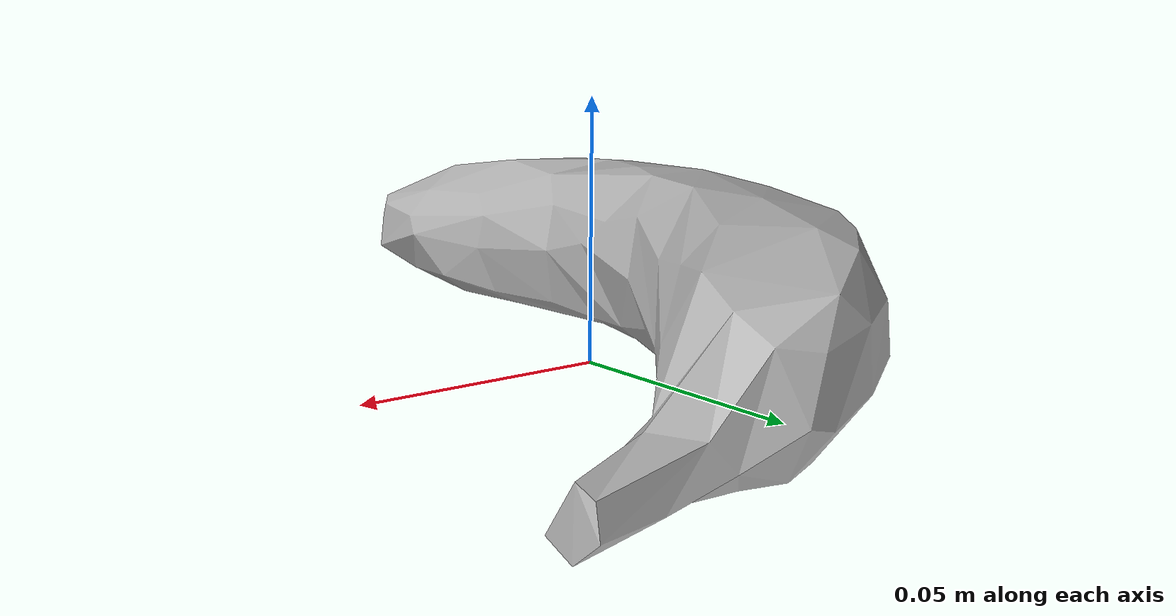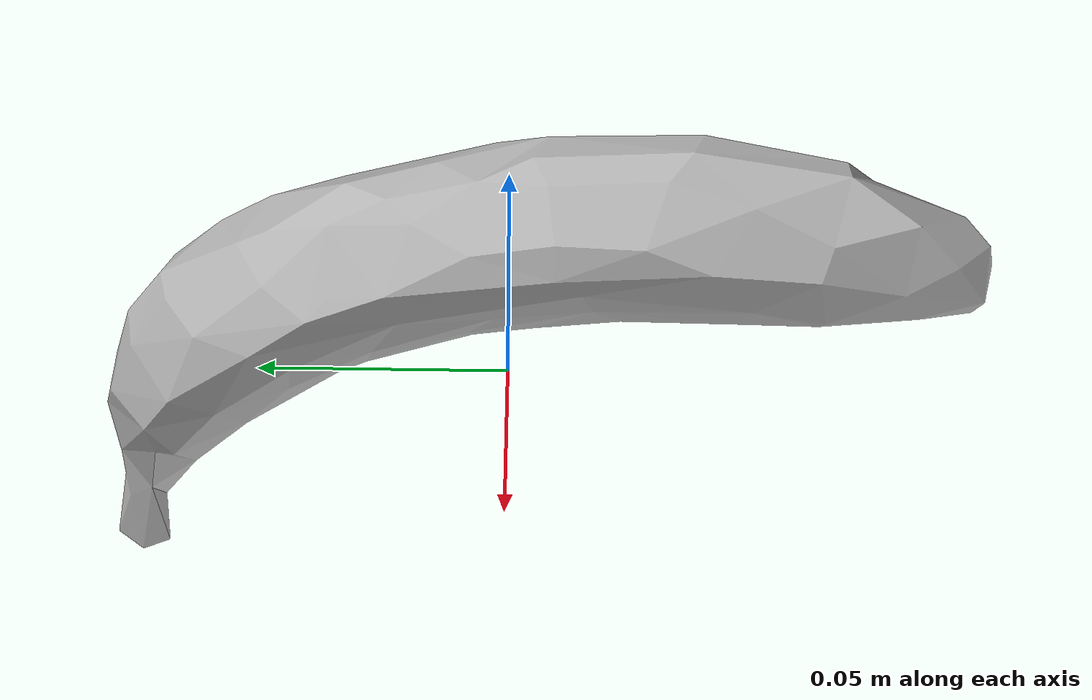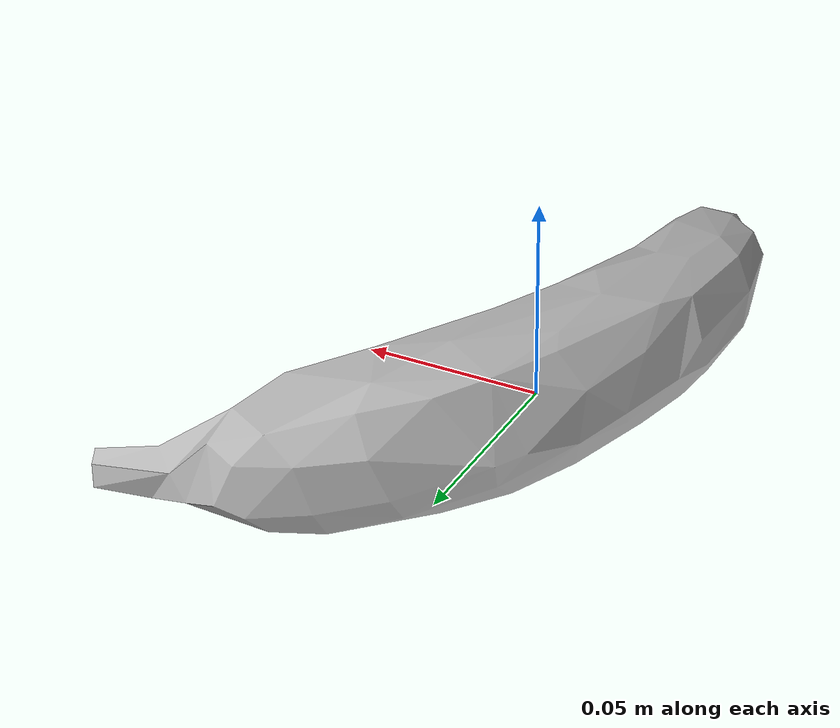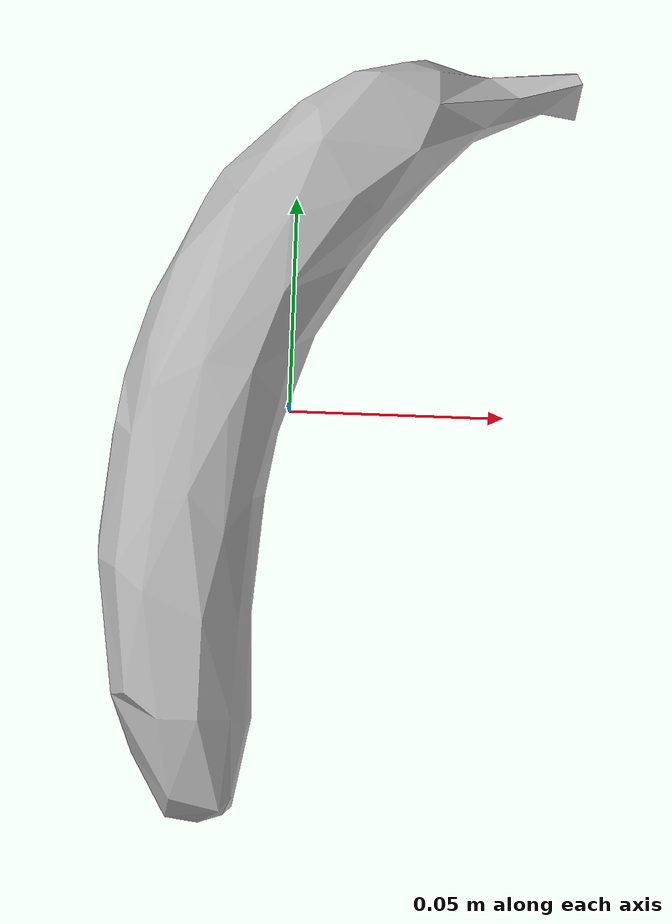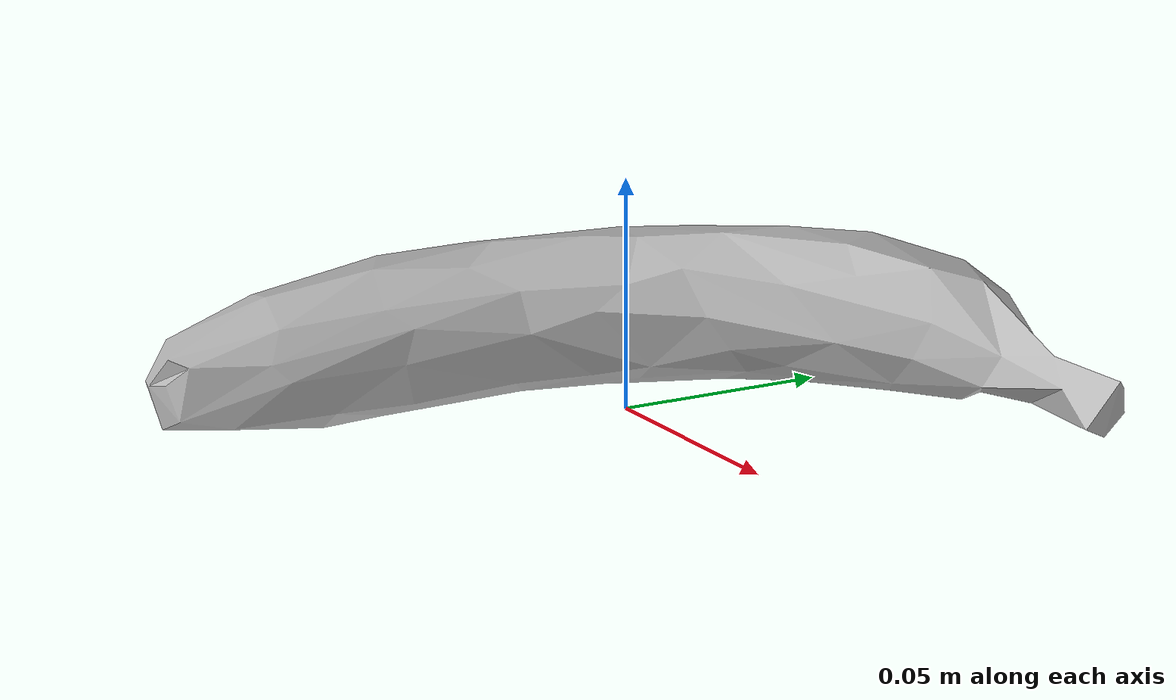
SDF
<?xml version='1.0'?>
<sdf version="1.4">
  <model name="011_banana">
    <static>false</static>
    <link name="link">
      <inertial>
        <pose>-0.0006710180276367565 0.005194163283845127 0.015295016787991408 -1.514495768997813 1.3560052253702974 2.8168364296684465</pose>
        <mass>0.02653598312066397</mass>
        <inertia>
          <ixx>6.17531827368097e-05</ixx>
          <ixy>4.5051650434579054e-21</ixy>
          <ixz>1.739490990948274e-20</ixz>
          <iyy>5.6259398080348685e-05</iyy>
          <iyz>-4.8367317656610885e-21</iyz>
          <izz>9.119790130864466e-06</izz>
        </inertia>
      </inertial>
      <collision name="collision">
        <geometry>
          <mesh>
            <!-- Use a downsampled mesh for collisions -->
            <uri>model:///011_banana/011_banana_250_collision.stl</uri>
	        </mesh>
        </geometry>
        <surface>
      </surface>
      </collision>
      <visual name="visual">
        <geometry>
          <mesh>
            <uri>model:///011_banana/textured.obj</uri>
	        </mesh>
        </geometry>
        <material>
          <script>
            <uri>model:///011_banana/011_banana.material</uri>
            <name>011_banana</name>
          </script>
        </material>
      </visual>
    </link>
  </model>
</sdf>
